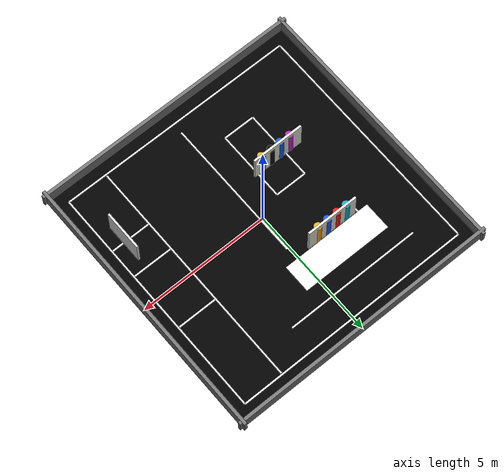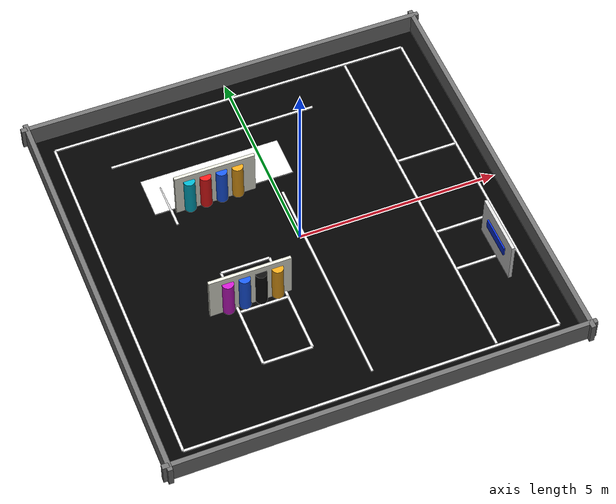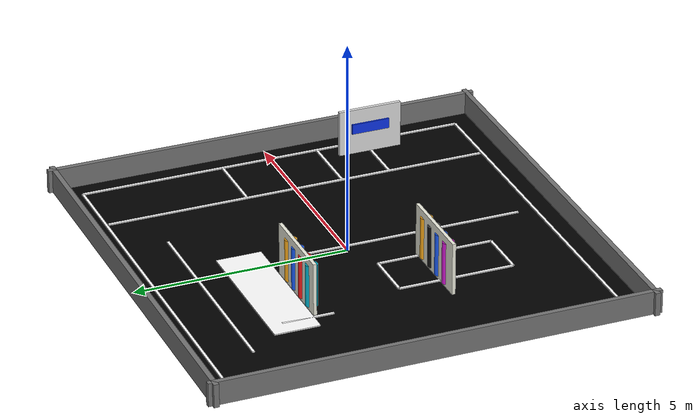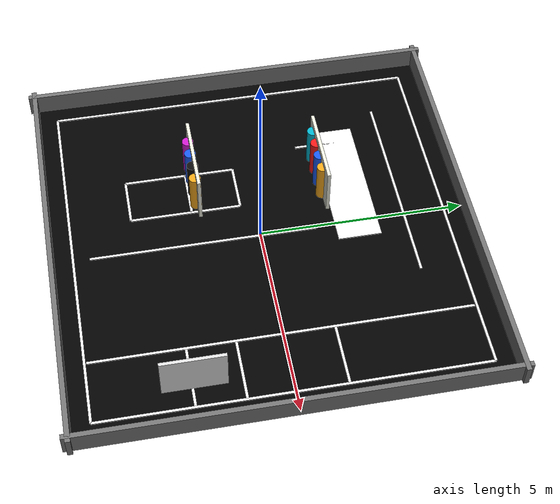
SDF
<?xml version="1.0"?>
<sdf version="1.6">
  <world name="smart_community">
    <plugin name="ros_api" filename="libgazebo_ros_api_plugin.so"/>

    <gravity>0 0 -9.8</gravity>
    <scene>
      <ambient>0.45 0.45 0.45 1</ambient>
      <background>0.72 0.74 0.76 1</background>
      <shadows>true</shadows>
    </scene>
    <gui fullscreen="0">
      <camera name="user_camera">
        <pose>0 -8 7 1.05 0 0</pose>
        <view_controller>orbit</view_controller>
      </camera>
    </gui>

    <light name="sun" type="directional">
      <pose>0 0 10 0 0 0</pose>
      <diffuse>0.9 0.9 0.85 1</diffuse>
      <specular>0.2 0.2 0.2 1</specular>
      <direction>-0.4 0.2 -0.9</direction>
    </light>

    <model name="map_floor">
      <static>true</static>
      <pose>0 0 0 0 0 0</pose>
      <link name="link">
        <collision name="collision"><geometry><box><size>10 10 0.04</size></box></geometry></collision>
        <visual name="black_map"><pose>0 0 0.025 0 0 0</pose><geometry><box><size>10 10 0.03</size></box></geometry><material><ambient>0 0 0 1</ambient><diffuse>0 0 0 1</diffuse></material></visual>
      </link>
    </model>

    <model name="map_white_lines">
      <static>true</static>
      <link name="lines">
        <!-- outer_top | 中心线坐标: (-4.55, 4.55) 到 (4.55, 4.55) | 占地坐标: 左下(-4.55, 4.52) 到 右上(4.55, 4.58) | Gazebo写法: pose=(0, 4.55, 0.06), size=9.1 x 0.06 x 0.025 -->
        <visual name="outer_top">
          <pose>0 4.55 0.06 0 0 0</pose>
          <geometry>
            <box><size>9.1 0.06 0.025</size></box>
          </geometry>
          <material>
            <ambient>1 1 1 1</ambient>
            <diffuse>1 1 1 1</diffuse>
          </material>
        </visual>
        <!-- outer_bottom | 中心线坐标: (-4.55, -4.55) 到 (4.55, -4.55) | 占地坐标: 左下(-4.55, -4.58) 到 右上(4.55, -4.52) | Gazebo写法: pose=(0, -4.55, 0.06), size=9.1 x 0.06 x 0.025 -->
        <visual name="outer_bottom">
          <pose>0 -4.55 0.06 0 0 0</pose>
          <geometry>
            <box><size>9.1 0.06 0.025</size></box>
          </geometry>
          <material>
            <ambient>1 1 1 1</ambient>
            <diffuse>1 1 1 1</diffuse>
          </material>
        </visual>
        <!-- outer_left | 中心线坐标: (-4.55, -4.55) 到 (-4.55, 4.55) | 占地坐标: 左下(-4.58, -4.55) 到 右上(-4.52, 4.55) | Gazebo写法: pose=(-4.55, 0, 0.06), size=0.06 x 9.1 x 0.025 -->
        <visual name="outer_left">
          <pose>-4.55 0 0.06 0 0 0</pose>
          <geometry>
            <box><size>0.06 9.1 0.025</size></box>
          </geometry>
          <material>
            <ambient>1 1 1 1</ambient>
            <diffuse>1 1 1 1</diffuse>
          </material>
        </visual>
        <!-- outer_right | 中心线坐标: (4.55, -4.55) 到 (4.55, 4.55) | 占地坐标: 左下(4.52, -4.55) 到 右上(4.58, 4.55) | Gazebo写法: pose=(4.55, 0, 0.06), size=0.06 x 9.1 x 0.025 -->
        <visual name="outer_right">
          <pose>4.55 0 0.06 0 0 0</pose>
          <geometry>
            <box><size>0.06 9.1 0.025</size></box>
          </geometry>
          <material>
            <ambient>1 1 1 1</ambient>
            <diffuse>1 1 1 1</diffuse>
          </material>
        </visual>
        <!-- top_inner_h | 中心线坐标: (-3.45, 3.55) 到 (1.75, 3.55) | 占地坐标: 左下(-3.45, 3.52) 到 右上(1.75, 3.58) | Gazebo写法: pose=(-0.85, 3.55, 0.06), size=5.2 x 0.06 x 0.025 -->
        <visual name="top_inner_h">
          <pose>-0.85 3.55 0.06 0 0 0</pose>
          <geometry>
            <box><size>5.2 0.06 0.025</size></box>
          </geometry>
          <material>
            <ambient>1 1 1 1</ambient>
            <diffuse>1 1 1 1</diffuse>
          </material>
        </visual>
        <!-- top_inner_l | 中心线坐标: (-2.55, 1.35) 到 (-2.55, 2.55) | 占地坐标: 左下(-2.58, 1.35) 到 右上(-2.52, 2.55) | Gazebo写法: pose=(-2.55, 1.95, 0.06), size=0.06 x 1.2 x 0.025 -->
        <visual name="top_inner_l">
          <pose>-2.55 1.95 0.06 0 0 0</pose>
          <geometry>
            <box><size>0.06 1.2 0.025</size></box>
          </geometry>
          <material>
            <ambient>1 1 1 1</ambient>
            <diffuse>1 1 1 1</diffuse>
          </material>
        </visual>
        <!-- middle_h | 中心线坐标: (-2.95, 2.35) 到 (0.55, 2.35) | 占地坐标: 左下(-2.95, 1.82) 到 右上(0.55, 2.88) | Gazebo写法: pose=(-1.2, 2.35, 0.06), size=3.5 x 1.06 x 0.025 -->
        <visual name="middle_h">
          <pose>-1.20 2.35 0.06 0 0 0</pose>
          <geometry>
            <box><size>3.5 1.06 0.025</size></box>
          </geometry>
          <material>
            <ambient>1 1 1 1</ambient>
            <diffuse>1 1 1 1</diffuse>
          </material>
        </visual>
        <!-- center_v | 中心线坐标: (0.1, -4.15) 到 (0.1, 1.35) | 占地坐标: 左下(0.07, -4.15) 到 右上(0.13, 1.35) | Gazebo写法: pose=(0.1, -1.4, 0.06), size=0.06 x 5.5 x 0.025 -->
        <visual name="center_v">
          <pose>0.1 -1.4 0.06 0 0 0</pose>
          <geometry>
            <box><size>0.06 5.5 0.025</size></box>
          </geometry>
          <material>
            <ambient>1 1 1 1</ambient>
            <diffuse>1 1 1 1</diffuse>
          </material>
        </visual>
        <!-- right_lane | 中心线坐标: (3, -4.5) 到 (3, 4.5) | 占地坐标: 左下(2.97, -4.5) 到 右上(3.03, 4.5) | Gazebo写法: pose=(3, 0, 0.06), size=0.06 x 9 x 0.025 -->
        <visual name="right_lane">
          <pose>3.0 0 0.06 0 0 0</pose>
          <geometry>
            <box><size>0.06 9.0 0.025</size></box>
          </geometry>
          <material>
            <ambient>1 1 1 1</ambient>
            <diffuse>1 1 1 1</diffuse>
          </material>
        </visual>
        <!-- lower_block_left | 中心线坐标: (-2.1, -3.05) 到 (-2.1, -0.35) | 占地坐标: 左下(-2.13, -3.05) 到 右上(-2.07, -0.35) | Gazebo写法: pose=(-2.1, -1.7, 0.06), size=0.06 x 2.7 x 0.025 -->
        <visual name="lower_block_left">
          <pose>-2.1 -1.7 0.06 0 0 0</pose>
          <geometry>
            <box><size>0.06 2.7 0.025</size></box>
          </geometry>
          <material>
            <ambient>1 1 1 1</ambient>
            <diffuse>1 1 1 1</diffuse>
          </material>
        </visual>
        <!-- lower_block_right | 中心线坐标: (-0.9, -3.05) 到 (-0.9, -0.35) | 占地坐标: 左下(-0.93, -3.05) 到 右上(-0.87, -0.35) | Gazebo写法: pose=(-0.9, -1.7, 0.06), size=0.06 x 2.7 x 0.025 -->
        <visual name="lower_block_right">
          <pose>-0.9 -1.7 0.06 0 0 0</pose>
          <geometry>
            <box><size>0.06 2.7 0.025</size></box>
          </geometry>
          <material>
            <ambient>1 1 1 1</ambient>
            <diffuse>1 1 1 1</diffuse>
          </material>
        </visual>
        <!-- lower_block_top | 中心线坐标: (-2.1, -0.35) 到 (-0.9, -0.35) | 占地坐标: 左下(-2.1, -0.38) 到 右上(-0.9, -0.32) | Gazebo写法: pose=(-1.5, -0.35, 0.06), size=1.2 x 0.06 x 0.025 -->
        <visual name="lower_block_top">
          <pose>-1.5 -0.35 0.06 0 0 0</pose>
          <geometry>
            <box><size>1.2 0.06 0.025</size></box>
          </geometry>
          <material>
            <ambient>1 1 1 1</ambient>
            <diffuse>1 1 1 1</diffuse>
          </material>
        </visual>
        <!-- lower_block_mid | 中心线坐标: (-2.1, -1.55) 到 (-0.9, -1.55) | 占地坐标: 左下(-2.1, -1.58) 到 右上(-0.9, -1.52) | Gazebo写法: pose=(-1.5, -1.55, 0.06), size=1.2 x 0.06 x 0.025 -->
        <visual name="lower_block_mid">
          <pose>-1.5 -1.55 0.06 0 0 0</pose>
          <geometry>
            <box><size>1.2 0.06 0.025</size></box>
          </geometry>
          <material>
            <ambient>1 1 1 1</ambient>
            <diffuse>1 1 1 1</diffuse>
          </material>
        </visual>
        <!-- lower_block_bottom | 中心线坐标: (-2.1, -3.05) 到 (-0.9, -3.05) | 占地坐标: 左下(-2.1, -3.08) 到 右上(-0.9, -3.02) | Gazebo写法: pose=(-1.5, -3.05, 0.06), size=1.2 x 0.06 x 0.025 -->
        <visual name="lower_block_bottom">
          <pose>-1.5 -3.05 0.06 0 0 0</pose>
          <geometry>
            <box><size>1.2 0.06 0.025</size></box>
          </geometry>
          <material>
            <ambient>1 1 1 1</ambient>
            <diffuse>1 1 1 1</diffuse>
          </material>
        </visual>
        <!-- parking_2 | 中心线坐标: (3.03, 1.2) 到 (4.53, 1.2) | 占地坐标: 左下(3.03, 1.17) 到 右上(4.53, 1.23) | Gazebo写法: pose=(3.78, 1.2, 0.06), size=1.5 x 0.06 x 0.025 -->
        <visual name="parking_2">
          <pose>3.78 1.2 0.06 0 0 0</pose>
          <geometry>
            <box><size>1.5 0.06 0.025</size></box>
          </geometry>
          <material>
            <ambient>1 1 1 1</ambient>
            <diffuse>1 1 1 1</diffuse>
          </material>
        </visual>
        <!-- parking_3 | 中心线坐标: (3.03, -1.1) 到 (4.53, -1.1) | 占地坐标: 左下(3.03, -1.13) 到 右上(4.53, -1.07) | Gazebo写法: pose=(3.78, -1.1, 0.06), size=1.5 x 0.06 x 0.025 -->
        <visual name="parking_3">
          <pose>3.78 -1.1 0.06 0 0 0</pose>
          <geometry>
            <box><size>1.5 0.06 0.025</size></box>
          </geometry>
          <material>
            <ambient>1 1 1 1</ambient>
            <diffuse>1 1 1 1</diffuse>
          </material>
        </visual>
        <!-- parking_4 | 中心线坐标: (3.03, -2.25) 到 (4.53, -2.25) | 占地坐标: 左下(3.03, -2.28) 到 右上(4.53, -2.22) | Gazebo写法: pose=(3.78, -2.25, 0.06), size=1.5 x 0.06 x 0.025 -->
        <visual name="parking_4">
          <pose>3.78 -2.25 0.06 0 0 0</pose>
          <geometry>
            <box><size>1.5 0.06 0.025</size></box>
          </geometry>
          <material>
            <ambient>1 1 1 1</ambient>
            <diffuse>1 1 1 1</diffuse>
          </material>
        </visual>
      </link>
    </model>
    <model name="outer_walls">
      <static>true</static>
      <link name="walls">
        <collision name="north_collision"><pose>0 5.05 0.28 0 0 0</pose><geometry><box><size>10.4 0.12 0.55</size></box></geometry></collision>
        <collision name="south_collision"><pose>0 -5.05 0.28 0 0 0</pose><geometry><box><size>10.4 0.12 0.55</size></box></geometry></collision>
        <collision name="east_collision"><pose>5.05 0 0.28 0 0 0</pose><geometry><box><size>0.12 10.4 0.55</size></box></geometry></collision>
        <collision name="west_collision"><pose>-5.05 0 0.28 0 0 0</pose><geometry><box><size>0.12 10.4 0.55</size></box></geometry></collision>
        <visual name="north"><pose>0 5.05 0.28 0 0 0</pose><geometry><box><size>10.4 0.12 0.55</size></box></geometry><material><ambient>0.45 0.45 0.45 1</ambient><diffuse>0.45 0.45 0.45 1</diffuse></material></visual>
        <visual name="south"><pose>0 -5.05 0.28 0 0 0</pose><geometry><box><size>10.4 0.12 0.55</size></box></geometry><material><ambient>0.45 0.45 0.45 1</ambient><diffuse>0.45 0.45 0.45 1</diffuse></material></visual>
        <visual name="east"><pose>5.05 0 0.28 0 0 0</pose><geometry><box><size>0.12 10.4 0.55</size></box></geometry><material><ambient>0.45 0.45 0.45 1</ambient><diffuse>0.45 0.45 0.45 1</diffuse></material></visual>
        <visual name="west"><pose>-5.05 0 0.28 0 0 0</pose><geometry><box><size>0.12 10.4 0.55</size></box></geometry><material><ambient>0.45 0.45 0.45 1</ambient><diffuse>0.45 0.45 0.45 1</diffuse></material></visual>
      </link>
    </model>
    <model name="people_area_1_board">
      <static>true</static>
      <pose>-1.45 1.75 0.65 0 0 0</pose>
      <link name="panel">
        <visual name="board"><geometry><box><size>2.0 0.08 1.25</size></box></geometry><material><ambient>0.92 0.92 0.86 1</ambient><diffuse>0.92 0.92 0.86 1</diffuse></material></visual>
        <visual name="resident_1"><pose>-0.65 -0.06 -0.05 0 0 0</pose><geometry><cylinder><radius>0.14</radius><length>1.0</length></cylinder></geometry><material><ambient>0.0 0.7 0.8 1</ambient><diffuse>0.0 0.7 0.8 1</diffuse></material></visual>
        <visual name="outsider"><pose>-0.25 -0.06 -0.05 0 0 0</pose><geometry><cylinder><radius>0.14</radius><length>1.0</length></cylinder></geometry><material><ambient>0.95 0.1 0.1 1</ambient><diffuse>0.95 0.1 0.1 1</diffuse></material></visual>
        <visual name="resident_2"><pose>0.15 -0.06 -0.05 0 0 0</pose><geometry><cylinder><radius>0.14</radius><length>1.0</length></cylinder></geometry><material><ambient>0.1 0.35 0.95 1</ambient><diffuse>0.1 0.35 0.95 1</diffuse></material></visual>
        <visual name="resident_3"><pose>0.55 -0.06 -0.05 0 0 0</pose><geometry><cylinder><radius>0.14</radius><length>1.0</length></cylinder></geometry><material><ambient>0.95 0.65 0.1 1</ambient><diffuse>0.95 0.65 0.1 1</diffuse></material></visual>
      </link>
    </model>

    <model name="people_area_2_board">
      <static>true</static>
      <pose>-1.75 -1.35 0.65 0 0 0</pose>
      <link name="panel">
        <visual name="board"><geometry><box><size>2.0 0.08 1.25</size></box></geometry><material><ambient>0.92 0.92 0.86 1</ambient><diffuse>0.92 0.92 0.86 1</diffuse></material></visual>
        <visual name="resident_1"><pose>-0.55 -0.06 -0.05 0 0 0</pose><geometry><cylinder><radius>0.14</radius><length>1.0</length></cylinder></geometry><material><ambient>0.8 0.1 0.8 1</ambient><diffuse>0.8 0.1 0.8 1</diffuse></material></visual>
        <visual name="resident_2"><pose>-0.15 -0.06 -0.05 0 0 0</pose><geometry><cylinder><radius>0.14</radius><length>1.0</length></cylinder></geometry><material><ambient>0.1 0.35 0.95 1</ambient><diffuse>0.1 0.35 0.95 1</diffuse></material></visual>
        <visual name="resident_3"><pose>0.25 -0.06 -0.05 0 0 0</pose><geometry><cylinder><radius>0.14</radius><length>1.0</length></cylinder></geometry><material><ambient>0.05 0.05 0.05 1</ambient><diffuse>0.05 0.05 0.05 1</diffuse></material></visual>
        <visual name="resident_4"><pose>0.65 -0.06 -0.05 0 0 0</pose><geometry><cylinder><radius>0.14</radius><length>1.0</length></cylinder></geometry><material><ambient>0.95 0.65 0.1 1</ambient><diffuse>0.95 0.65 0.1 1</diffuse></material></visual>
      </link>
    </model>

    <model name="plate_board">
      <static>true</static>
      <pose>4.05 -2.2 0.65 0 0 -1.5708</pose>
      <link name="panel">
        <visual name="board"><geometry><box><size>1.5 0.08 1.1</size></box></geometry><material><ambient>0.86 0.86 0.86 1</ambient><diffuse>0.86 0.86 0.86 1</diffuse></material></visual>
        <visual name="plate"><pose>0 -0.06 0.08 0 0 0</pose><geometry><box><size>0.9 0.04 0.24</size></box></geometry><material><ambient>0.05 0.20 0.90 1</ambient><diffuse>0.05 0.20 0.90 1</diffuse></material></visual>
      </link>
    </model>
  </world>
</sdf>
